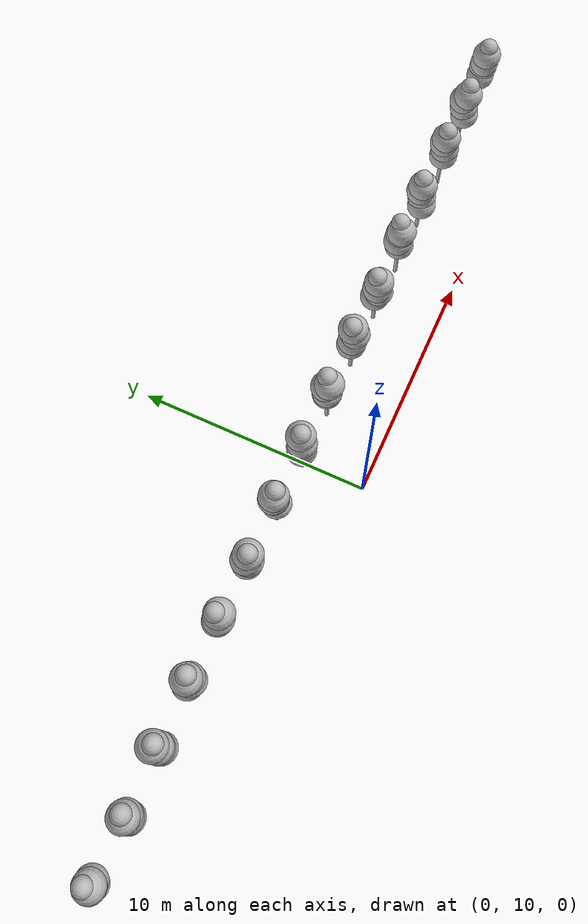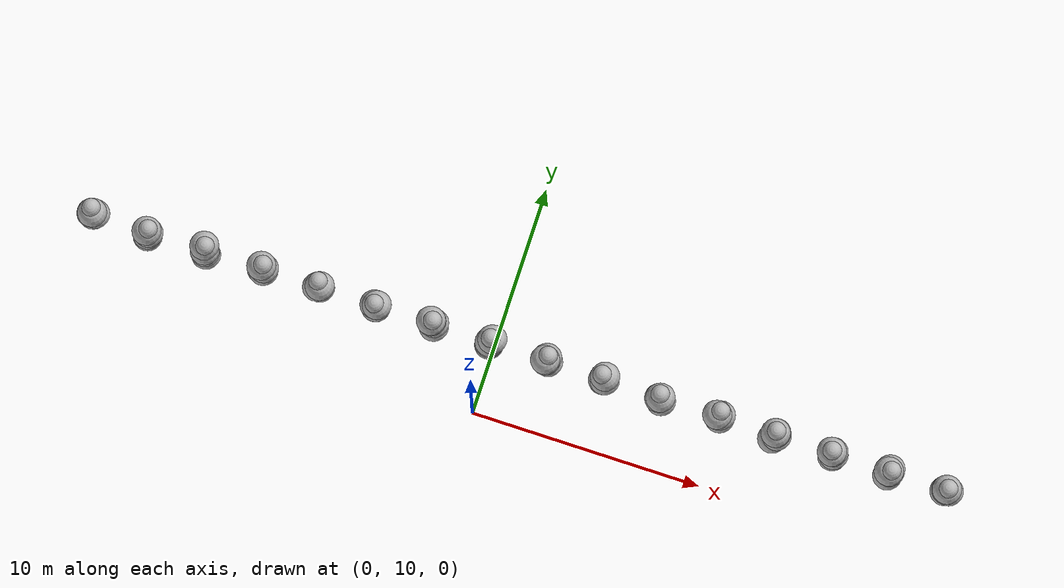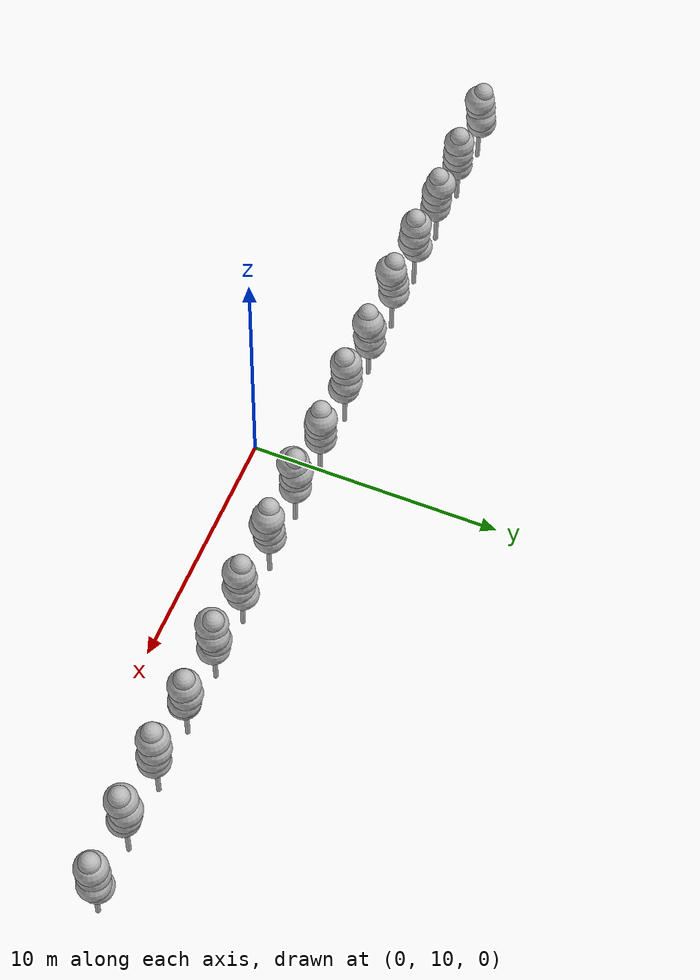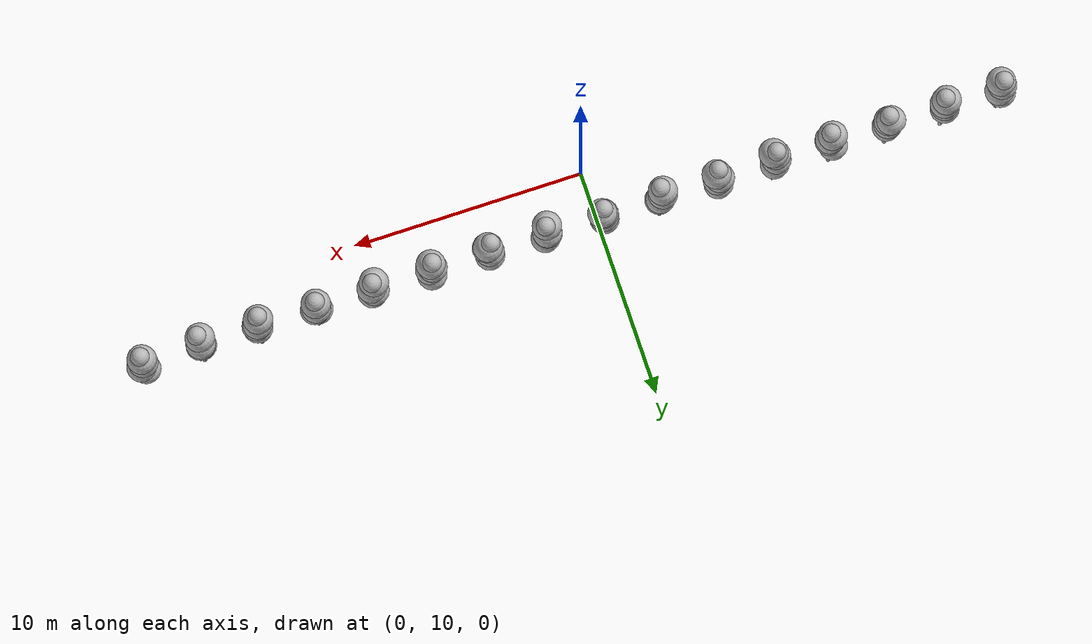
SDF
<sdf version="1.6">
 <world name="default">
  <model name="windbreak_1">
   <static>true</static>
   <link name="trunk">
    <pose>-17.600 12.700 0.841 0 0 0</pose>
    <collision name="trunk_c">
     <geometry><cylinder><radius>0.0900</radius><length>1.6828</length></cylinder></geometry>
    </collision>
    <visual name="trunk_v">
     <geometry><cylinder><radius>0.0900</radius><length>1.6828</length></cylinder></geometry>
     <material>
      <script>
       <uri>model://orchard/materials/scripts</uri>
       <uri>model://orchard/materials/textures</uri>
       <name>Orchard/Bark</name>
      </script>
     </material>
    </visual>
   </link>
   <link name="crown0">
    <pose>-17.630 12.756 2.023 0 0 0</pose>
    <visual name="crown0_v">
     <geometry><sphere><radius>0.6200</radius></sphere></geometry>
     <material>
      <script>
       <uri>model://orchard/materials/scripts</uri>
       <uri>model://orchard/materials/textures</uri>
       <name>Orchard/Foliage0</name>
      </script>
     </material>
    </visual>
   </link>
   <link name="crown1">
    <pose>-17.511 12.759 2.483 0 0 0</pose>
    <visual name="crown1_v">
     <geometry><sphere><radius>0.6200</radius></sphere></geometry>
     <material>
      <script>
       <uri>model://orchard/materials/scripts</uri>
       <uri>model://orchard/materials/textures</uri>
       <name>Orchard/Foliage0</name>
      </script>
     </material>
    </visual>
   </link>
   <link name="crown2">
    <pose>-17.623 12.682 2.943 0 0 0</pose>
    <visual name="crown2_v">
     <geometry><sphere><radius>0.6200</radius></sphere></geometry>
     <material>
      <script>
       <uri>model://orchard/materials/scripts</uri>
       <uri>model://orchard/materials/textures</uri>
       <name>Orchard/Foliage2</name>
      </script>
     </material>
    </visual>
   </link>
   <link name="crown3">
    <pose>-17.543 12.644 3.403 0 0 0</pose>
    <visual name="crown3_v">
     <geometry><sphere><radius>0.6200</radius></sphere></geometry>
     <material>
      <script>
       <uri>model://orchard/materials/scripts</uri>
       <uri>model://orchard/materials/textures</uri>
       <name>Orchard/Foliage3</name>
      </script>
     </material>
    </visual>
   </link>
   <link name="crown4">
    <pose>-17.593 12.761 3.863 0 0 0</pose>
    <visual name="crown4_v">
     <geometry><sphere><radius>0.4000</radius></sphere></geometry>
     <material>
      <script>
       <uri>model://orchard/materials/scripts</uri>
       <uri>model://orchard/materials/textures</uri>
       <name>Orchard/Foliage1</name>
      </script>
     </material>
    </visual>
   </link>
  </model>
  <model name="windbreak_2">
   <static>true</static>
   <link name="trunk">
    <pose>-15.100 12.700 0.757 0 0 0</pose>
    <collision name="trunk_c">
     <geometry><cylinder><radius>0.0900</radius><length>1.5137</length></cylinder></geometry>
    </collision>
    <visual name="trunk_v">
     <geometry><cylinder><radius>0.0900</radius><length>1.5137</length></cylinder></geometry>
     <material>
      <script>
       <uri>model://orchard/materials/scripts</uri>
       <uri>model://orchard/materials/textures</uri>
       <name>Orchard/Bark</name>
      </script>
     </material>
    </visual>
   </link>
   <link name="crown0">
    <pose>-15.188 12.615 1.854 0 0 0</pose>
    <visual name="crown0_v">
     <geometry><sphere><radius>0.6200</radius></sphere></geometry>
     <material>
      <script>
       <uri>model://orchard/materials/scripts</uri>
       <uri>model://orchard/materials/textures</uri>
       <name>Orchard/Foliage1</name>
      </script>
     </material>
    </visual>
   </link>
   <link name="crown1">
    <pose>-15.167 12.622 2.314 0 0 0</pose>
    <visual name="crown1_v">
     <geometry><sphere><radius>0.6200</radius></sphere></geometry>
     <material>
      <script>
       <uri>model://orchard/materials/scripts</uri>
       <uri>model://orchard/materials/textures</uri>
       <name>Orchard/Foliage3</name>
      </script>
     </material>
    </visual>
   </link>
   <link name="crown2">
    <pose>-15.105 12.644 2.774 0 0 0</pose>
    <visual name="crown2_v">
     <geometry><sphere><radius>0.6200</radius></sphere></geometry>
     <material>
      <script>
       <uri>model://orchard/materials/scripts</uri>
       <uri>model://orchard/materials/textures</uri>
       <name>Orchard/Foliage2</name>
      </script>
     </material>
    </visual>
   </link>
   <link name="crown3">
    <pose>-15.161 12.640 3.234 0 0 0</pose>
    <visual name="crown3_v">
     <geometry><sphere><radius>0.6200</radius></sphere></geometry>
     <material>
      <script>
       <uri>model://orchard/materials/scripts</uri>
       <uri>model://orchard/materials/textures</uri>
       <name>Orchard/Foliage3</name>
      </script>
     </material>
    </visual>
   </link>
   <link name="crown4">
    <pose>-15.076 12.673 3.694 0 0 0</pose>
    <visual name="crown4_v">
     <geometry><sphere><radius>0.4000</radius></sphere></geometry>
     <material>
      <script>
       <uri>model://orchard/materials/scripts</uri>
       <uri>model://orchard/materials/textures</uri>
       <name>Orchard/Foliage0</name>
      </script>
     </material>
    </visual>
   </link>
  </model>
  <model name="windbreak_3">
   <static>true</static>
   <link name="trunk">
    <pose>-12.600 12.700 0.835 0 0 0</pose>
    <collision name="trunk_c">
     <geometry><cylinder><radius>0.0900</radius><length>1.6694</length></cylinder></geometry>
    </collision>
    <visual name="trunk_v">
     <geometry><cylinder><radius>0.0900</radius><length>1.6694</length></cylinder></geometry>
     <material>
      <script>
       <uri>model://orchard/materials/scripts</uri>
       <uri>model://orchard/materials/textures</uri>
       <name>Orchard/Bark</name>
      </script>
     </material>
    </visual>
   </link>
   <link name="crown0">
    <pose>-12.594 12.623 2.009 0 0 0</pose>
    <visual name="crown0_v">
     <geometry><sphere><radius>0.6200</radius></sphere></geometry>
     <material>
      <script>
       <uri>model://orchard/materials/scripts</uri>
       <uri>model://orchard/materials/textures</uri>
       <name>Orchard/Foliage3</name>
      </script>
     </material>
    </visual>
   </link>
   <link name="crown1">
    <pose>-12.626 12.650 2.469 0 0 0</pose>
    <visual name="crown1_v">
     <geometry><sphere><radius>0.6200</radius></sphere></geometry>
     <material>
      <script>
       <uri>model://orchard/materials/scripts</uri>
       <uri>model://orchard/materials/textures</uri>
       <name>Orchard/Foliage1</name>
      </script>
     </material>
    </visual>
   </link>
   <link name="crown2">
    <pose>-12.619 12.651 2.929 0 0 0</pose>
    <visual name="crown2_v">
     <geometry><sphere><radius>0.6200</radius></sphere></geometry>
     <material>
      <script>
       <uri>model://orchard/materials/scripts</uri>
       <uri>model://orchard/materials/textures</uri>
       <name>Orchard/Foliage3</name>
      </script>
     </material>
    </visual>
   </link>
   <link name="crown3">
    <pose>-12.654 12.778 3.389 0 0 0</pose>
    <visual name="crown3_v">
     <geometry><sphere><radius>0.6200</radius></sphere></geometry>
     <material>
      <script>
       <uri>model://orchard/materials/scripts</uri>
       <uri>model://orchard/materials/textures</uri>
       <name>Orchard/Foliage0</name>
      </script>
     </material>
    </visual>
   </link>
   <link name="crown4">
    <pose>-12.578 12.715 3.849 0 0 0</pose>
    <visual name="crown4_v">
     <geometry><sphere><radius>0.4000</radius></sphere></geometry>
     <material>
      <script>
       <uri>model://orchard/materials/scripts</uri>
       <uri>model://orchard/materials/textures</uri>
       <name>Orchard/Foliage3</name>
      </script>
     </material>
    </visual>
   </link>
  </model>
  <model name="windbreak_4">
   <static>true</static>
   <link name="trunk">
    <pose>-10.100 12.700 0.933 0 0 0</pose>
    <collision name="trunk_c">
     <geometry><cylinder><radius>0.0900</radius><length>1.8665</length></cylinder></geometry>
    </collision>
    <visual name="trunk_v">
     <geometry><cylinder><radius>0.0900</radius><length>1.8665</length></cylinder></geometry>
     <material>
      <script>
       <uri>model://orchard/materials/scripts</uri>
       <uri>model://orchard/materials/textures</uri>
       <name>Orchard/Bark</name>
      </script>
     </material>
    </visual>
   </link>
   <link name="crown0">
    <pose>-10.170 12.750 2.206 0 0 0</pose>
    <visual name="crown0_v">
     <geometry><sphere><radius>0.6200</radius></sphere></geometry>
     <material>
      <script>
       <uri>model://orchard/materials/scripts</uri>
       <uri>model://orchard/materials/textures</uri>
       <name>Orchard/Foliage0</name>
      </script>
     </material>
    </visual>
   </link>
   <link name="crown1">
    <pose>-10.035 12.627 2.666 0 0 0</pose>
    <visual name="crown1_v">
     <geometry><sphere><radius>0.6200</radius></sphere></geometry>
     <material>
      <script>
       <uri>model://orchard/materials/scripts</uri>
       <uri>model://orchard/materials/textures</uri>
       <name>Orchard/Foliage1</name>
      </script>
     </material>
    </visual>
   </link>
   <link name="crown2">
    <pose>-10.014 12.678 3.126 0 0 0</pose>
    <visual name="crown2_v">
     <geometry><sphere><radius>0.6200</radius></sphere></geometry>
     <material>
      <script>
       <uri>model://orchard/materials/scripts</uri>
       <uri>model://orchard/materials/textures</uri>
       <name>Orchard/Foliage1</name>
      </script>
     </material>
    </visual>
   </link>
   <link name="crown3">
    <pose>-10.105 12.688 3.586 0 0 0</pose>
    <visual name="crown3_v">
     <geometry><sphere><radius>0.6200</radius></sphere></geometry>
     <material>
      <script>
       <uri>model://orchard/materials/scripts</uri>
       <uri>model://orchard/materials/textures</uri>
       <name>Orchard/Foliage2</name>
      </script>
     </material>
    </visual>
   </link>
   <link name="crown4">
    <pose>-10.020 12.691 4.046 0 0 0</pose>
    <visual name="crown4_v">
     <geometry><sphere><radius>0.4000</radius></sphere></geometry>
     <material>
      <script>
       <uri>model://orchard/materials/scripts</uri>
       <uri>model://orchard/materials/textures</uri>
       <name>Orchard/Foliage2</name>
      </script>
     </material>
    </visual>
   </link>
  </model>
  <model name="windbreak_5">
   <static>true</static>
   <link name="trunk">
    <pose>-7.600 12.700 0.948 0 0 0</pose>
    <collision name="trunk_c">
     <geometry><cylinder><radius>0.0900</radius><length>1.8951</length></cylinder></geometry>
    </collision>
    <visual name="trunk_v">
     <geometry><cylinder><radius>0.0900</radius><length>1.8951</length></cylinder></geometry>
     <material>
      <script>
       <uri>model://orchard/materials/scripts</uri>
       <uri>model://orchard/materials/textures</uri>
       <name>Orchard/Bark</name>
      </script>
     </material>
    </visual>
   </link>
   <link name="crown0">
    <pose>-7.597 12.755 2.235 0 0 0</pose>
    <visual name="crown0_v">
     <geometry><sphere><radius>0.6200</radius></sphere></geometry>
     <material>
      <script>
       <uri>model://orchard/materials/scripts</uri>
       <uri>model://orchard/materials/textures</uri>
       <name>Orchard/Foliage1</name>
      </script>
     </material>
    </visual>
   </link>
   <link name="crown1">
    <pose>-7.676 12.704 2.695 0 0 0</pose>
    <visual name="crown1_v">
     <geometry><sphere><radius>0.6200</radius></sphere></geometry>
     <material>
      <script>
       <uri>model://orchard/materials/scripts</uri>
       <uri>model://orchard/materials/textures</uri>
       <name>Orchard/Foliage1</name>
      </script>
     </material>
    </visual>
   </link>
   <link name="crown2">
    <pose>-7.656 12.624 3.155 0 0 0</pose>
    <visual name="crown2_v">
     <geometry><sphere><radius>0.6200</radius></sphere></geometry>
     <material>
      <script>
       <uri>model://orchard/materials/scripts</uri>
       <uri>model://orchard/materials/textures</uri>
       <name>Orchard/Foliage2</name>
      </script>
     </material>
    </visual>
   </link>
   <link name="crown3">
    <pose>-7.523 12.630 3.615 0 0 0</pose>
    <visual name="crown3_v">
     <geometry><sphere><radius>0.6200</radius></sphere></geometry>
     <material>
      <script>
       <uri>model://orchard/materials/scripts</uri>
       <uri>model://orchard/materials/textures</uri>
       <name>Orchard/Foliage2</name>
      </script>
     </material>
    </visual>
   </link>
   <link name="crown4">
    <pose>-7.608 12.734 4.075 0 0 0</pose>
    <visual name="crown4_v">
     <geometry><sphere><radius>0.4000</radius></sphere></geometry>
     <material>
      <script>
       <uri>model://orchard/materials/scripts</uri>
       <uri>model://orchard/materials/textures</uri>
       <name>Orchard/Foliage1</name>
      </script>
     </material>
    </visual>
   </link>
  </model>
  <model name="windbreak_6">
   <static>true</static>
   <link name="trunk">
    <pose>-5.100 12.700 0.767 0 0 0</pose>
    <collision name="trunk_c">
     <geometry><cylinder><radius>0.0900</radius><length>1.5336</length></cylinder></geometry>
    </collision>
    <visual name="trunk_v">
     <geometry><cylinder><radius>0.0900</radius><length>1.5336</length></cylinder></geometry>
     <material>
      <script>
       <uri>model://orchard/materials/scripts</uri>
       <uri>model://orchard/materials/textures</uri>
       <name>Orchard/Bark</name>
      </script>
     </material>
    </visual>
   </link>
   <link name="crown0">
    <pose>-5.143 12.735 1.874 0 0 0</pose>
    <visual name="crown0_v">
     <geometry><sphere><radius>0.6200</radius></sphere></geometry>
     <material>
      <script>
       <uri>model://orchard/materials/scripts</uri>
       <uri>model://orchard/materials/textures</uri>
       <name>Orchard/Foliage2</name>
      </script>
     </material>
    </visual>
   </link>
   <link name="crown1">
    <pose>-5.113 12.682 2.334 0 0 0</pose>
    <visual name="crown1_v">
     <geometry><sphere><radius>0.6200</radius></sphere></geometry>
     <material>
      <script>
       <uri>model://orchard/materials/scripts</uri>
       <uri>model://orchard/materials/textures</uri>
       <name>Orchard/Foliage2</name>
      </script>
     </material>
    </visual>
   </link>
   <link name="crown2">
    <pose>-5.178 12.726 2.794 0 0 0</pose>
    <visual name="crown2_v">
     <geometry><sphere><radius>0.6200</radius></sphere></geometry>
     <material>
      <script>
       <uri>model://orchard/materials/scripts</uri>
       <uri>model://orchard/materials/textures</uri>
       <name>Orchard/Foliage3</name>
      </script>
     </material>
    </visual>
   </link>
   <link name="crown3">
    <pose>-5.042 12.661 3.254 0 0 0</pose>
    <visual name="crown3_v">
     <geometry><sphere><radius>0.6200</radius></sphere></geometry>
     <material>
      <script>
       <uri>model://orchard/materials/scripts</uri>
       <uri>model://orchard/materials/textures</uri>
       <name>Orchard/Foliage0</name>
      </script>
     </material>
    </visual>
   </link>
   <link name="crown4">
    <pose>-5.120 12.625 3.714 0 0 0</pose>
    <visual name="crown4_v">
     <geometry><sphere><radius>0.4000</radius></sphere></geometry>
     <material>
      <script>
       <uri>model://orchard/materials/scripts</uri>
       <uri>model://orchard/materials/textures</uri>
       <name>Orchard/Foliage0</name>
      </script>
     </material>
    </visual>
   </link>
  </model>
  <model name="windbreak_7">
   <static>true</static>
   <link name="trunk">
    <pose>-2.600 12.700 0.912 0 0 0</pose>
    <collision name="trunk_c">
     <geometry><cylinder><radius>0.0900</radius><length>1.8239</length></cylinder></geometry>
    </collision>
    <visual name="trunk_v">
     <geometry><cylinder><radius>0.0900</radius><length>1.8239</length></cylinder></geometry>
     <material>
      <script>
       <uri>model://orchard/materials/scripts</uri>
       <uri>model://orchard/materials/textures</uri>
       <name>Orchard/Bark</name>
      </script>
     </material>
    </visual>
   </link>
   <link name="crown0">
    <pose>-2.556 12.674 2.164 0 0 0</pose>
    <visual name="crown0_v">
     <geometry><sphere><radius>0.6200</radius></sphere></geometry>
     <material>
      <script>
       <uri>model://orchard/materials/scripts</uri>
       <uri>model://orchard/materials/textures</uri>
       <name>Orchard/Foliage2</name>
      </script>
     </material>
    </visual>
   </link>
   <link name="crown1">
    <pose>-2.568 12.770 2.624 0 0 0</pose>
    <visual name="crown1_v">
     <geometry><sphere><radius>0.6200</radius></sphere></geometry>
     <material>
      <script>
       <uri>model://orchard/materials/scripts</uri>
       <uri>model://orchard/materials/textures</uri>
       <name>Orchard/Foliage2</name>
      </script>
     </material>
    </visual>
   </link>
   <link name="crown2">
    <pose>-2.671 12.734 3.084 0 0 0</pose>
    <visual name="crown2_v">
     <geometry><sphere><radius>0.6200</radius></sphere></geometry>
     <material>
      <script>
       <uri>model://orchard/materials/scripts</uri>
       <uri>model://orchard/materials/textures</uri>
       <name>Orchard/Foliage0</name>
      </script>
     </material>
    </visual>
   </link>
   <link name="crown3">
    <pose>-2.674 12.699 3.544 0 0 0</pose>
    <visual name="crown3_v">
     <geometry><sphere><radius>0.6200</radius></sphere></geometry>
     <material>
      <script>
       <uri>model://orchard/materials/scripts</uri>
       <uri>model://orchard/materials/textures</uri>
       <name>Orchard/Foliage0</name>
      </script>
     </material>
    </visual>
   </link>
   <link name="crown4">
    <pose>-2.585 12.668 4.004 0 0 0</pose>
    <visual name="crown4_v">
     <geometry><sphere><radius>0.4000</radius></sphere></geometry>
     <material>
      <script>
       <uri>model://orchard/materials/scripts</uri>
       <uri>model://orchard/materials/textures</uri>
       <name>Orchard/Foliage1</name>
      </script>
     </material>
    </visual>
   </link>
  </model>
  <model name="windbreak_8">
   <static>true</static>
   <link name="trunk">
    <pose>-0.100 12.700 0.824 0 0 0</pose>
    <collision name="trunk_c">
     <geometry><cylinder><radius>0.0900</radius><length>1.6488</length></cylinder></geometry>
    </collision>
    <visual name="trunk_v">
     <geometry><cylinder><radius>0.0900</radius><length>1.6488</length></cylinder></geometry>
     <material>
      <script>
       <uri>model://orchard/materials/scripts</uri>
       <uri>model://orchard/materials/textures</uri>
       <name>Orchard/Bark</name>
      </script>
     </material>
    </visual>
   </link>
   <link name="crown0">
    <pose>-0.140 12.701 1.989 0 0 0</pose>
    <visual name="crown0_v">
     <geometry><sphere><radius>0.6200</radius></sphere></geometry>
     <material>
      <script>
       <uri>model://orchard/materials/scripts</uri>
       <uri>model://orchard/materials/textures</uri>
       <name>Orchard/Foliage1</name>
      </script>
     </material>
    </visual>
   </link>
   <link name="crown1">
    <pose>-0.119 12.706 2.449 0 0 0</pose>
    <visual name="crown1_v">
     <geometry><sphere><radius>0.6200</radius></sphere></geometry>
     <material>
      <script>
       <uri>model://orchard/materials/scripts</uri>
       <uri>model://orchard/materials/textures</uri>
       <name>Orchard/Foliage2</name>
      </script>
     </material>
    </visual>
   </link>
   <link name="crown2">
    <pose>-0.106 12.693 2.909 0 0 0</pose>
    <visual name="crown2_v">
     <geometry><sphere><radius>0.6200</radius></sphere></geometry>
     <material>
      <script>
       <uri>model://orchard/materials/scripts</uri>
       <uri>model://orchard/materials/textures</uri>
       <name>Orchard/Foliage2</name>
      </script>
     </material>
    </visual>
   </link>
   <link name="crown3">
    <pose>-0.010 12.777 3.369 0 0 0</pose>
    <visual name="crown3_v">
     <geometry><sphere><radius>0.6200</radius></sphere></geometry>
     <material>
      <script>
       <uri>model://orchard/materials/scripts</uri>
       <uri>model://orchard/materials/textures</uri>
       <name>Orchard/Foliage3</name>
      </script>
     </material>
    </visual>
   </link>
   <link name="crown4">
    <pose>-0.071 12.743 3.829 0 0 0</pose>
    <visual name="crown4_v">
     <geometry><sphere><radius>0.4000</radius></sphere></geometry>
     <material>
      <script>
       <uri>model://orchard/materials/scripts</uri>
       <uri>model://orchard/materials/textures</uri>
       <name>Orchard/Foliage2</name>
      </script>
     </material>
    </visual>
   </link>
  </model>
  <model name="windbreak_9">
   <static>true</static>
   <link name="trunk">
    <pose>2.400 12.700 0.928 0 0 0</pose>
    <collision name="trunk_c">
     <geometry><cylinder><radius>0.0900</radius><length>1.8557</length></cylinder></geometry>
    </collision>
    <visual name="trunk_v">
     <geometry><cylinder><radius>0.0900</radius><length>1.8557</length></cylinder></geometry>
     <material>
      <script>
       <uri>model://orchard/materials/scripts</uri>
       <uri>model://orchard/materials/textures</uri>
       <name>Orchard/Bark</name>
      </script>
     </material>
    </visual>
   </link>
   <link name="crown0">
    <pose>2.449 12.744 2.196 0 0 0</pose>
    <visual name="crown0_v">
     <geometry><sphere><radius>0.6200</radius></sphere></geometry>
     <material>
      <script>
       <uri>model://orchard/materials/scripts</uri>
       <uri>model://orchard/materials/textures</uri>
       <name>Orchard/Foliage3</name>
      </script>
     </material>
    </visual>
   </link>
   <link name="crown1">
    <pose>2.349 12.709 2.656 0 0 0</pose>
    <visual name="crown1_v">
     <geometry><sphere><radius>0.6200</radius></sphere></geometry>
     <material>
      <script>
       <uri>model://orchard/materials/scripts</uri>
       <uri>model://orchard/materials/textures</uri>
       <name>Orchard/Foliage3</name>
      </script>
     </material>
    </visual>
   </link>
   <link name="crown2">
    <pose>2.383 12.786 3.116 0 0 0</pose>
    <visual name="crown2_v">
     <geometry><sphere><radius>0.6200</radius></sphere></geometry>
     <material>
      <script>
       <uri>model://orchard/materials/scripts</uri>
       <uri>model://orchard/materials/textures</uri>
       <name>Orchard/Foliage1</name>
      </script>
     </material>
    </visual>
   </link>
   <link name="crown3">
    <pose>2.344 12.614 3.576 0 0 0</pose>
    <visual name="crown3_v">
     <geometry><sphere><radius>0.6200</radius></sphere></geometry>
     <material>
      <script>
       <uri>model://orchard/materials/scripts</uri>
       <uri>model://orchard/materials/textures</uri>
       <name>Orchard/Foliage1</name>
      </script>
     </material>
    </visual>
   </link>
   <link name="crown4">
    <pose>2.432 12.749 4.036 0 0 0</pose>
    <visual name="crown4_v">
     <geometry><sphere><radius>0.4000</radius></sphere></geometry>
     <material>
      <script>
       <uri>model://orchard/materials/scripts</uri>
       <uri>model://orchard/materials/textures</uri>
       <name>Orchard/Foliage3</name>
      </script>
     </material>
    </visual>
   </link>
  </model>
  <model name="windbreak_10">
   <static>true</static>
   <link name="trunk">
    <pose>4.900 12.700 0.923 0 0 0</pose>
    <collision name="trunk_c">
     <geometry><cylinder><radius>0.0900</radius><length>1.8454</length></cylinder></geometry>
    </collision>
    <visual name="trunk_v">
     <geometry><cylinder><radius>0.0900</radius><length>1.8454</length></cylinder></geometry>
     <material>
      <script>
       <uri>model://orchard/materials/scripts</uri>
       <uri>model://orchard/materials/textures</uri>
       <name>Orchard/Bark</name>
      </script>
     </material>
    </visual>
   </link>
   <link name="crown0">
    <pose>4.870 12.732 2.185 0 0 0</pose>
    <visual name="crown0_v">
     <geometry><sphere><radius>0.6200</radius></sphere></geometry>
     <material>
      <script>
       <uri>model://orchard/materials/scripts</uri>
       <uri>model://orchard/materials/textures</uri>
       <name>Orchard/Foliage0</name>
      </script>
     </material>
    </visual>
   </link>
   <link name="crown1">
    <pose>4.865 12.688 2.645 0 0 0</pose>
    <visual name="crown1_v">
     <geometry><sphere><radius>0.6200</radius></sphere></geometry>
     <material>
      <script>
       <uri>model://orchard/materials/scripts</uri>
       <uri>model://orchard/materials/textures</uri>
       <name>Orchard/Foliage0</name>
      </script>
     </material>
    </visual>
   </link>
   <link name="crown2">
    <pose>4.956 12.622 3.105 0 0 0</pose>
    <visual name="crown2_v">
     <geometry><sphere><radius>0.6200</radius></sphere></geometry>
     <material>
      <script>
       <uri>model://orchard/materials/scripts</uri>
       <uri>model://orchard/materials/textures</uri>
       <name>Orchard/Foliage1</name>
      </script>
     </material>
    </visual>
   </link>
   <link name="crown3">
    <pose>4.935 12.719 3.565 0 0 0</pose>
    <visual name="crown3_v">
     <geometry><sphere><radius>0.6200</radius></sphere></geometry>
     <material>
      <script>
       <uri>model://orchard/materials/scripts</uri>
       <uri>model://orchard/materials/textures</uri>
       <name>Orchard/Foliage0</name>
      </script>
     </material>
    </visual>
   </link>
   <link name="crown4">
    <pose>4.812 12.707 4.025 0 0 0</pose>
    <visual name="crown4_v">
     <geometry><sphere><radius>0.4000</radius></sphere></geometry>
     <material>
      <script>
       <uri>model://orchard/materials/scripts</uri>
       <uri>model://orchard/materials/textures</uri>
       <name>Orchard/Foliage2</name>
      </script>
     </material>
    </visual>
   </link>
  </model>
  <model name="windbreak_11">
   <static>true</static>
   <link name="trunk">
    <pose>7.400 12.700 0.834 0 0 0</pose>
    <collision name="trunk_c">
     <geometry><cylinder><radius>0.0900</radius><length>1.6683</length></cylinder></geometry>
    </collision>
    <visual name="trunk_v">
     <geometry><cylinder><radius>0.0900</radius><length>1.6683</length></cylinder></geometry>
     <material>
      <script>
       <uri>model://orchard/materials/scripts</uri>
       <uri>model://orchard/materials/textures</uri>
       <name>Orchard/Bark</name>
      </script>
     </material>
    </visual>
   </link>
   <link name="crown0">
    <pose>7.396 12.736 2.008 0 0 0</pose>
    <visual name="crown0_v">
     <geometry><sphere><radius>0.6200</radius></sphere></geometry>
     <material>
      <script>
       <uri>model://orchard/materials/scripts</uri>
       <uri>model://orchard/materials/textures</uri>
       <name>Orchard/Foliage3</name>
      </script>
     </material>
    </visual>
   </link>
   <link name="crown1">
    <pose>7.435 12.611 2.468 0 0 0</pose>
    <visual name="crown1_v">
     <geometry><sphere><radius>0.6200</radius></sphere></geometry>
     <material>
      <script>
       <uri>model://orchard/materials/scripts</uri>
       <uri>model://orchard/materials/textures</uri>
       <name>Orchard/Foliage0</name>
      </script>
     </material>
    </visual>
   </link>
   <link name="crown2">
    <pose>7.332 12.653 2.928 0 0 0</pose>
    <visual name="crown2_v">
     <geometry><sphere><radius>0.6200</radius></sphere></geometry>
     <material>
      <script>
       <uri>model://orchard/materials/scripts</uri>
       <uri>model://orchard/materials/textures</uri>
       <name>Orchard/Foliage0</name>
      </script>
     </material>
    </visual>
   </link>
   <link name="crown3">
    <pose>7.387 12.621 3.388 0 0 0</pose>
    <visual name="crown3_v">
     <geometry><sphere><radius>0.6200</radius></sphere></geometry>
     <material>
      <script>
       <uri>model://orchard/materials/scripts</uri>
       <uri>model://orchard/materials/textures</uri>
       <name>Orchard/Foliage0</name>
      </script>
     </material>
    </visual>
   </link>
   <link name="crown4">
    <pose>7.340 12.698 3.848 0 0 0</pose>
    <visual name="crown4_v">
     <geometry><sphere><radius>0.4000</radius></sphere></geometry>
     <material>
      <script>
       <uri>model://orchard/materials/scripts</uri>
       <uri>model://orchard/materials/textures</uri>
       <name>Orchard/Foliage1</name>
      </script>
     </material>
    </visual>
   </link>
  </model>
  <model name="windbreak_12">
   <static>true</static>
   <link name="trunk">
    <pose>9.900 12.700 0.918 0 0 0</pose>
    <collision name="trunk_c">
     <geometry><cylinder><radius>0.0900</radius><length>1.8357</length></cylinder></geometry>
    </collision>
    <visual name="trunk_v">
     <geometry><cylinder><radius>0.0900</radius><length>1.8357</length></cylinder></geometry>
     <material>
      <script>
       <uri>model://orchard/materials/scripts</uri>
       <uri>model://orchard/materials/textures</uri>
       <name>Orchard/Bark</name>
      </script>
     </material>
    </visual>
   </link>
   <link name="crown0">
    <pose>9.979 12.722 2.176 0 0 0</pose>
    <visual name="crown0_v">
     <geometry><sphere><radius>0.6200</radius></sphere></geometry>
     <material>
      <script>
       <uri>model://orchard/materials/scripts</uri>
       <uri>model://orchard/materials/textures</uri>
       <name>Orchard/Foliage2</name>
      </script>
     </material>
    </visual>
   </link>
   <link name="crown1">
    <pose>9.889 12.768 2.636 0 0 0</pose>
    <visual name="crown1_v">
     <geometry><sphere><radius>0.6200</radius></sphere></geometry>
     <material>
      <script>
       <uri>model://orchard/materials/scripts</uri>
       <uri>model://orchard/materials/textures</uri>
       <name>Orchard/Foliage3</name>
      </script>
     </material>
    </visual>
   </link>
   <link name="crown2">
    <pose>9.989 12.742 3.096 0 0 0</pose>
    <visual name="crown2_v">
     <geometry><sphere><radius>0.6200</radius></sphere></geometry>
     <material>
      <script>
       <uri>model://orchard/materials/scripts</uri>
       <uri>model://orchard/materials/textures</uri>
       <name>Orchard/Foliage3</name>
      </script>
     </material>
    </visual>
   </link>
   <link name="crown3">
    <pose>9.844 12.653 3.556 0 0 0</pose>
    <visual name="crown3_v">
     <geometry><sphere><radius>0.6200</radius></sphere></geometry>
     <material>
      <script>
       <uri>model://orchard/materials/scripts</uri>
       <uri>model://orchard/materials/textures</uri>
       <name>Orchard/Foliage2</name>
      </script>
     </material>
    </visual>
   </link>
   <link name="crown4">
    <pose>9.943 12.776 4.016 0 0 0</pose>
    <visual name="crown4_v">
     <geometry><sphere><radius>0.4000</radius></sphere></geometry>
     <material>
      <script>
       <uri>model://orchard/materials/scripts</uri>
       <uri>model://orchard/materials/textures</uri>
       <name>Orchard/Foliage0</name>
      </script>
     </material>
    </visual>
   </link>
  </model>
  <model name="windbreak_13">
   <static>true</static>
   <link name="trunk">
    <pose>12.400 12.700 0.815 0 0 0</pose>
    <collision name="trunk_c">
     <geometry><cylinder><radius>0.0900</radius><length>1.6296</length></cylinder></geometry>
    </collision>
    <visual name="trunk_v">
     <geometry><cylinder><radius>0.0900</radius><length>1.6296</length></cylinder></geometry>
     <material>
      <script>
       <uri>model://orchard/materials/scripts</uri>
       <uri>model://orchard/materials/textures</uri>
       <name>Orchard/Bark</name>
      </script>
     </material>
    </visual>
   </link>
   <link name="crown0">
    <pose>12.319 12.624 1.970 0 0 0</pose>
    <visual name="crown0_v">
     <geometry><sphere><radius>0.6200</radius></sphere></geometry>
     <material>
      <script>
       <uri>model://orchard/materials/scripts</uri>
       <uri>model://orchard/materials/textures</uri>
       <name>Orchard/Foliage3</name>
      </script>
     </material>
    </visual>
   </link>
   <link name="crown1">
    <pose>12.467 12.720 2.430 0 0 0</pose>
    <visual name="crown1_v">
     <geometry><sphere><radius>0.6200</radius></sphere></geometry>
     <material>
      <script>
       <uri>model://orchard/materials/scripts</uri>
       <uri>model://orchard/materials/textures</uri>
       <name>Orchard/Foliage2</name>
      </script>
     </material>
    </visual>
   </link>
   <link name="crown2">
    <pose>12.407 12.784 2.890 0 0 0</pose>
    <visual name="crown2_v">
     <geometry><sphere><radius>0.6200</radius></sphere></geometry>
     <material>
      <script>
       <uri>model://orchard/materials/scripts</uri>
       <uri>model://orchard/materials/textures</uri>
       <name>Orchard/Foliage0</name>
      </script>
     </material>
    </visual>
   </link>
   <link name="crown3">
    <pose>12.380 12.711 3.350 0 0 0</pose>
    <visual name="crown3_v">
     <geometry><sphere><radius>0.6200</radius></sphere></geometry>
     <material>
      <script>
       <uri>model://orchard/materials/scripts</uri>
       <uri>model://orchard/materials/textures</uri>
       <name>Orchard/Foliage0</name>
      </script>
     </material>
    </visual>
   </link>
   <link name="crown4">
    <pose>12.394 12.740 3.810 0 0 0</pose>
    <visual name="crown4_v">
     <geometry><sphere><radius>0.4000</radius></sphere></geometry>
     <material>
      <script>
       <uri>model://orchard/materials/scripts</uri>
       <uri>model://orchard/materials/textures</uri>
       <name>Orchard/Foliage2</name>
      </script>
     </material>
    </visual>
   </link>
  </model>
  <model name="windbreak_14">
   <static>true</static>
   <link name="trunk">
    <pose>14.900 12.700 0.937 0 0 0</pose>
    <collision name="trunk_c">
     <geometry><cylinder><radius>0.0900</radius><length>1.8742</length></cylinder></geometry>
    </collision>
    <visual name="trunk_v">
     <geometry><cylinder><radius>0.0900</radius><length>1.8742</length></cylinder></geometry>
     <material>
      <script>
       <uri>model://orchard/materials/scripts</uri>
       <uri>model://orchard/materials/textures</uri>
       <name>Orchard/Bark</name>
      </script>
     </material>
    </visual>
   </link>
   <link name="crown0">
    <pose>14.922 12.667 2.214 0 0 0</pose>
    <visual name="crown0_v">
     <geometry><sphere><radius>0.6200</radius></sphere></geometry>
     <material>
      <script>
       <uri>model://orchard/materials/scripts</uri>
       <uri>model://orchard/materials/textures</uri>
       <name>Orchard/Foliage3</name>
      </script>
     </material>
    </visual>
   </link>
   <link name="crown1">
    <pose>14.954 12.669 2.674 0 0 0</pose>
    <visual name="crown1_v">
     <geometry><sphere><radius>0.6200</radius></sphere></geometry>
     <material>
      <script>
       <uri>model://orchard/materials/scripts</uri>
       <uri>model://orchard/materials/textures</uri>
       <name>Orchard/Foliage3</name>
      </script>
     </material>
    </visual>
   </link>
   <link name="crown2">
    <pose>14.900 12.730 3.134 0 0 0</pose>
    <visual name="crown2_v">
     <geometry><sphere><radius>0.6200</radius></sphere></geometry>
     <material>
      <script>
       <uri>model://orchard/materials/scripts</uri>
       <uri>model://orchard/materials/textures</uri>
       <name>Orchard/Foliage0</name>
      </script>
     </material>
    </visual>
   </link>
   <link name="crown3">
    <pose>14.832 12.655 3.594 0 0 0</pose>
    <visual name="crown3_v">
     <geometry><sphere><radius>0.6200</radius></sphere></geometry>
     <material>
      <script>
       <uri>model://orchard/materials/scripts</uri>
       <uri>model://orchard/materials/textures</uri>
       <name>Orchard/Foliage3</name>
      </script>
     </material>
    </visual>
   </link>
   <link name="crown4">
    <pose>14.831 12.649 4.054 0 0 0</pose>
    <visual name="crown4_v">
     <geometry><sphere><radius>0.4000</radius></sphere></geometry>
     <material>
      <script>
       <uri>model://orchard/materials/scripts</uri>
       <uri>model://orchard/materials/textures</uri>
       <name>Orchard/Foliage1</name>
      </script>
     </material>
    </visual>
   </link>
  </model>
  <model name="windbreak_15">
   <static>true</static>
   <link name="trunk">
    <pose>17.400 12.700 0.900 0 0 0</pose>
    <collision name="trunk_c">
     <geometry><cylinder><radius>0.0900</radius><length>1.8009</length></cylinder></geometry>
    </collision>
    <visual name="trunk_v">
     <geometry><cylinder><radius>0.0900</radius><length>1.8009</length></cylinder></geometry>
     <material>
      <script>
       <uri>model://orchard/materials/scripts</uri>
       <uri>model://orchard/materials/textures</uri>
       <name>Orchard/Bark</name>
      </script>
     </material>
    </visual>
   </link>
   <link name="crown0">
    <pose>17.343 12.622 2.141 0 0 0</pose>
    <visual name="crown0_v">
     <geometry><sphere><radius>0.6200</radius></sphere></geometry>
     <material>
      <script>
       <uri>model://orchard/materials/scripts</uri>
       <uri>model://orchard/materials/textures</uri>
       <name>Orchard/Foliage3</name>
      </script>
     </material>
    </visual>
   </link>
   <link name="crown1">
    <pose>17.386 12.723 2.601 0 0 0</pose>
    <visual name="crown1_v">
     <geometry><sphere><radius>0.6200</radius></sphere></geometry>
     <material>
      <script>
       <uri>model://orchard/materials/scripts</uri>
       <uri>model://orchard/materials/textures</uri>
       <name>Orchard/Foliage3</name>
      </script>
     </material>
    </visual>
   </link>
   <link name="crown2">
    <pose>17.371 12.786 3.061 0 0 0</pose>
    <visual name="crown2_v">
     <geometry><sphere><radius>0.6200</radius></sphere></geometry>
     <material>
      <script>
       <uri>model://orchard/materials/scripts</uri>
       <uri>model://orchard/materials/textures</uri>
       <name>Orchard/Foliage2</name>
      </script>
     </material>
    </visual>
   </link>
   <link name="crown3">
    <pose>17.323 12.617 3.521 0 0 0</pose>
    <visual name="crown3_v">
     <geometry><sphere><radius>0.6200</radius></sphere></geometry>
     <material>
      <script>
       <uri>model://orchard/materials/scripts</uri>
       <uri>model://orchard/materials/textures</uri>
       <name>Orchard/Foliage2</name>
      </script>
     </material>
    </visual>
   </link>
   <link name="crown4">
    <pose>17.416 12.626 3.981 0 0 0</pose>
    <visual name="crown4_v">
     <geometry><sphere><radius>0.4000</radius></sphere></geometry>
     <material>
      <script>
       <uri>model://orchard/materials/scripts</uri>
       <uri>model://orchard/materials/textures</uri>
       <name>Orchard/Foliage1</name>
      </script>
     </material>
    </visual>
   </link>
  </model>
  <model name="windbreak_16">
   <static>true</static>
   <link name="trunk">
    <pose>19.900 12.700 0.772 0 0 0</pose>
    <collision name="trunk_c">
     <geometry><cylinder><radius>0.0900</radius><length>1.5446</length></cylinder></geometry>
    </collision>
    <visual name="trunk_v">
     <geometry><cylinder><radius>0.0900</radius><length>1.5446</length></cylinder></geometry>
     <material>
      <script>
       <uri>model://orchard/materials/scripts</uri>
       <uri>model://orchard/materials/textures</uri>
       <name>Orchard/Bark</name>
      </script>
     </material>
    </visual>
   </link>
   <link name="crown0">
    <pose>19.812 12.776 1.885 0 0 0</pose>
    <visual name="crown0_v">
     <geometry><sphere><radius>0.6200</radius></sphere></geometry>
     <material>
      <script>
       <uri>model://orchard/materials/scripts</uri>
       <uri>model://orchard/materials/textures</uri>
       <name>Orchard/Foliage2</name>
      </script>
     </material>
    </visual>
   </link>
   <link name="crown1">
    <pose>19.971 12.758 2.345 0 0 0</pose>
    <visual name="crown1_v">
     <geometry><sphere><radius>0.6200</radius></sphere></geometry>
     <material>
      <script>
       <uri>model://orchard/materials/scripts</uri>
       <uri>model://orchard/materials/textures</uri>
       <name>Orchard/Foliage0</name>
      </script>
     </material>
    </visual>
   </link>
   <link name="crown2">
    <pose>19.844 12.717 2.805 0 0 0</pose>
    <visual name="crown2_v">
     <geometry><sphere><radius>0.6200</radius></sphere></geometry>
     <material>
      <script>
       <uri>model://orchard/materials/scripts</uri>
       <uri>model://orchard/materials/textures</uri>
       <name>Orchard/Foliage2</name>
      </script>
     </material>
    </visual>
   </link>
   <link name="crown3">
    <pose>19.851 12.682 3.265 0 0 0</pose>
    <visual name="crown3_v">
     <geometry><sphere><radius>0.6200</radius></sphere></geometry>
     <material>
      <script>
       <uri>model://orchard/materials/scripts</uri>
       <uri>model://orchard/materials/textures</uri>
       <name>Orchard/Foliage3</name>
      </script>
     </material>
    </visual>
   </link>
   <link name="crown4">
    <pose>19.883 12.675 3.725 0 0 0</pose>
    <visual name="crown4_v">
     <geometry><sphere><radius>0.4000</radius></sphere></geometry>
     <material>
      <script>
       <uri>model://orchard/materials/scripts</uri>
       <uri>model://orchard/materials/textures</uri>
       <name>Orchard/Foliage0</name>
      </script>
     </material>
    </visual>
   </link>
  </model>
 </world>
</sdf>
